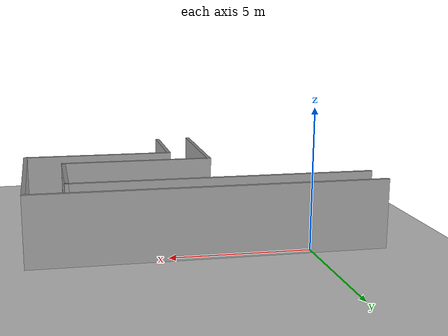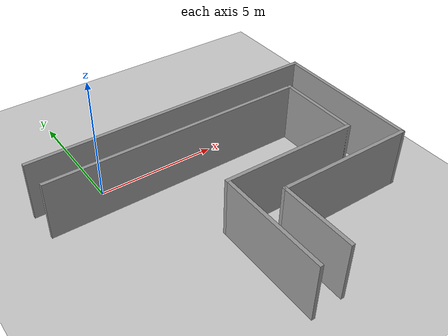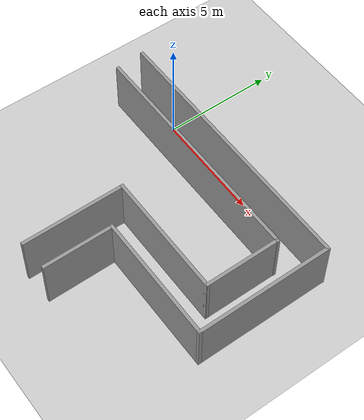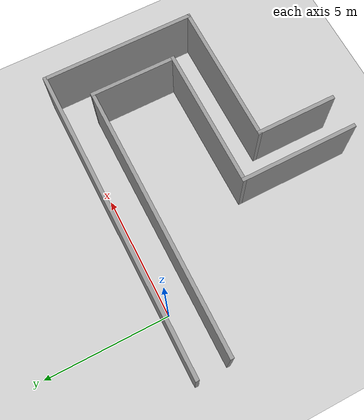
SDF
<sdf version="1.7">
 <world name="default">
  <model name="ground_plane">
   <static>1</static>
   <link name="link">
    <collision name="collision">
     <geometry><plane><normal>0 0 1</normal><size>100 100</size></plane></geometry>
     <surface><friction><ode><mu>100</mu><mu2>50</mu2></ode></friction></surface>
    </collision>
    <visual name="visual">
     <cast_shadows>0</cast_shadows>
     <geometry><plane><normal>0 0 1</normal><size>100 100</size></plane></geometry>
     <material>
      <script><uri>file://media/materials/scripts/gazebo.material</uri><name>Gazebo/Grey</name></script>
     </material>
    </visual>
   </link>
  </model>
  <light name="sun" type="directional">
   <pose>0 0 10 0 -0 0</pose>
   <diffuse>0.8 0.8 0.8 1</diffuse>
   <specular>0.2 0.2 0.2 1</specular>
   <attenuation>
    <range>1000</range>
    <constant>0.9</constant>
    <linear>0.01</linear>
    <quadratic>0.001</quadratic>
   </attenuation>
   <direction>-0.5 0.1 -0.9</direction>
   <spot><inner_angle>0</inner_angle><outer_angle>0</outer_angle><falloff>0</falloff></spot>
  </light>
  <scene><shadows>0</shadows><ambient>0.4 0.4 0.4 1</ambient><background>0.7 0.7 0.7 1</background></scene>
  <physics type="ode">
   <real_time_update_rate>1000</real_time_update_rate>
   <max_step_size>0.001</max_step_size>
   <real_time_factor>1</real_time_factor>
   <ode>
    <solver>
     <type>quick</type>
     <iters>150</iters>
     <precon_iters>0</precon_iters>
     <sor>1.4</sor>
     <use_dynamic_moi_rescaling>1</use_dynamic_moi_rescaling>
    </solver>
    <constraints>
     <cfm>1e-05</cfm>
     <erp>0.2</erp>
     <contact_max_correcting_vel>2000</contact_max_correcting_vel>
     <contact_surface_layer>0.01</contact_surface_layer>
    </constraints>
   </ode>
  </physics>
  <gravity>0 0 -9.8</gravity>
  <magnetic_field>6e-06 2.3e-05 -4.2e-05</magnetic_field>
  <atmosphere type="adiabatic"/>
  <audio><device>default</device></audio>
  <spherical_coordinates>
   <surface_model>EARTH_WGS84</surface_model>
   <latitude_deg>0</latitude_deg>
   <longitude_deg>0</longitude_deg>
   <elevation>0</elevation>
   <heading_deg>0</heading_deg>
  </spherical_coordinates>
  <model name="modelbrick">
   <pose>3.5529 -4.40389 0 0 -0 0</pose>
   <link name="Wall_30">
    <collision name="Wall_30_Collision">
     <geometry><box><size>12.5 0.15 2.5</size></box></geometry>
     <pose>0 0 1.25 0 -0 0</pose>
    </collision>
    <visual name="Wall_30_Visual">
     <pose>0 0 1.25 0 -0 0</pose>
     <geometry><box><size>12.5 0.15 2.5</size></box></geometry>
     <material>
      <script><uri>file://media/materials/scripts/gazebo.material</uri><name>Gazebo/Grey</name></script>
      <ambient>1 1 1 1</ambient>
     </material>
     <meta><layer>0</layer></meta>
    </visual>
    <pose>-0.000189 4.6506 0 0 -0 0</pose>
   </link>
   <link name="Wall_31">
    <collision name="Wall_31_Collision">
     <geometry><box><size>6.25 0.15 2.5</size></box></geometry>
     <pose>0 0 1.25 0 -0 0</pose>
    </collision>
    <visual name="Wall_31_Visual">
     <pose>0 0 1.25 0 -0 0</pose>
     <geometry><box><size>6.25 0.15 2.5</size></box></geometry>
     <material>
      <script><uri>file://media/materials/scripts/gazebo.material</uri><name>Gazebo/Grey</name></script>
      <ambient>1 1 1 1</ambient>
     </material>
     <meta><layer>0</layer></meta>
    </visual>
    <pose>6.17481 1.6006 0 0 -0 -1.5708</pose>
   </link>
   <link name="Wall_32">
    <collision name="Wall_32_Collision">
     <geometry><box><size>5.81575 0.15 2.5</size></box></geometry>
     <pose>0 0 1.25 0 -0 0</pose>
    </collision>
    <visual name="Wall_32_Visual">
     <pose>0 0 1.25 0 -0 0</pose>
     <geometry><box><size>5.81575 0.15 2.5</size></box></geometry>
     <material>
      <script><uri>file://media/materials/scripts/gazebo.material</uri><name>Gazebo/Grey</name></script>
      <ambient>1 1 1 1</ambient>
     </material>
     <meta><layer>0</layer></meta>
    </visual>
    <pose>3.34231 -1.44932 0 0 -0 3.14157</pose>
   </link>
   <link name="Wall_33">
    <collision name="Wall_33_Collision">
     <geometry><box><size>3.25 0.15 2.5</size></box></geometry>
     <pose>0 0 1.25 0 -0 0</pose>
    </collision>
    <visual name="Wall_33_Visual">
     <pose>0 0 1.25 0 -0 0</pose>
     <geometry><box><size>3.25 0.15 2.5</size></box></geometry>
     <material>
      <script><uri>file://media/materials/scripts/gazebo.material</uri><name>Gazebo/Grey</name></script>
      <ambient>1 1 1 1</ambient>
     </material>
     <meta><layer>0</layer></meta>
    </visual>
    <pose>0.509811 -3.01247 0 0 -0 -1.5708</pose>
   </link>
   <link name="Wall_44">
    <collision name="Wall_44_Collision">
     <geometry><box><size>11 0.15 2.5</size></box></geometry>
     <pose>0 0 1.25 0 -0 0</pose>
    </collision>
    <visual name="Wall_44_Visual">
     <pose>0 0 1.25 0 -0 0</pose>
     <geometry><box><size>11 0.15 2.5</size></box></geometry>
     <material>
      <script><uri>file://media/materials/scripts/gazebo.material</uri><name>Gazebo/Grey</name></script>
      <ambient>1 1 1 1</ambient>
     </material>
     <meta><layer>0</layer></meta>
    </visual>
    <pose>-0.657464 3.32074 0 0 -0 0</pose>
   </link>
   <link name="Wall_45">
    <collision name="Wall_45_Collision">
     <geometry><box><size>3.52135 0.15 2.5</size></box></geometry>
     <pose>0 0 1.25 0 -0 0</pose>
    </collision>
    <visual name="Wall_45_Visual">
     <pose>0 0 1.25 0 -0 0</pose>
     <geometry><box><size>3.52135 0.15 2.5</size></box></geometry>
     <material>
      <script><uri>file://media/materials/scripts/gazebo.material</uri><name>Gazebo/Grey</name></script>
      <ambient>1 1 1 1</ambient>
     </material>
     <meta><layer>0</layer></meta>
    </visual>
    <pose>4.75446 1.63507 0 0 -0 -1.57071</pose>
   </link>
   <link name="Wall_46">
    <collision name="Wall_46_Collision">
     <geometry><box><size>5.75 0.15 2.5</size></box></geometry>
     <pose>0 0 1.25 0 -0 0</pose>
    </collision>
    <visual name="Wall_46_Visual">
     <pose>0 0 1.25 0 -0 0</pose>
     <geometry><box><size>5.75 0.15 2.5</size></box></geometry>
     <material>
      <script><uri>file://media/materials/scripts/gazebo.material</uri><name>Gazebo/Grey</name></script>
      <ambient>1 1 1 1</ambient>
     </material>
     <meta><layer>0</layer></meta>
    </visual>
    <pose>1.95461 -0.050603 0 0 -0 3.14159</pose>
   </link>
   <link name="Wall_47">
    <collision name="Wall_47_Collision">
     <geometry><box><size>4.75 0.15 2.5</size></box></geometry>
     <pose>0 0 1.25 0 -0 0</pose>
    </collision>
    <visual name="Wall_47_Visual">
     <pose>0 0 1.25 0 -0 0</pose>
     <geometry><box><size>4.75 0.15 2.5</size></box></geometry>
     <material>
      <script><uri>file://media/materials/scripts/gazebo.material</uri><name>Gazebo/Grey</name></script>
      <ambient>1 1 1 1</ambient>
     </material>
     <meta><layer>0</layer></meta>
    </visual>
    <pose>-0.845389 -2.3506 0 0 -0 -1.5708</pose>
   </link>
   <static>1</static>
  </model>
 </world>
</sdf>
